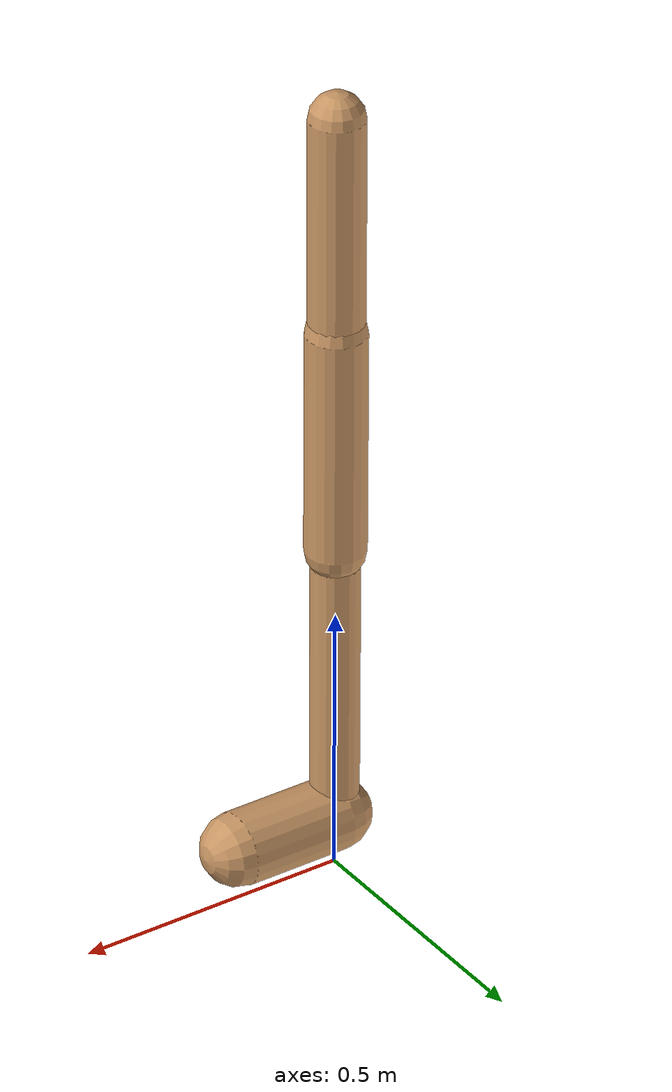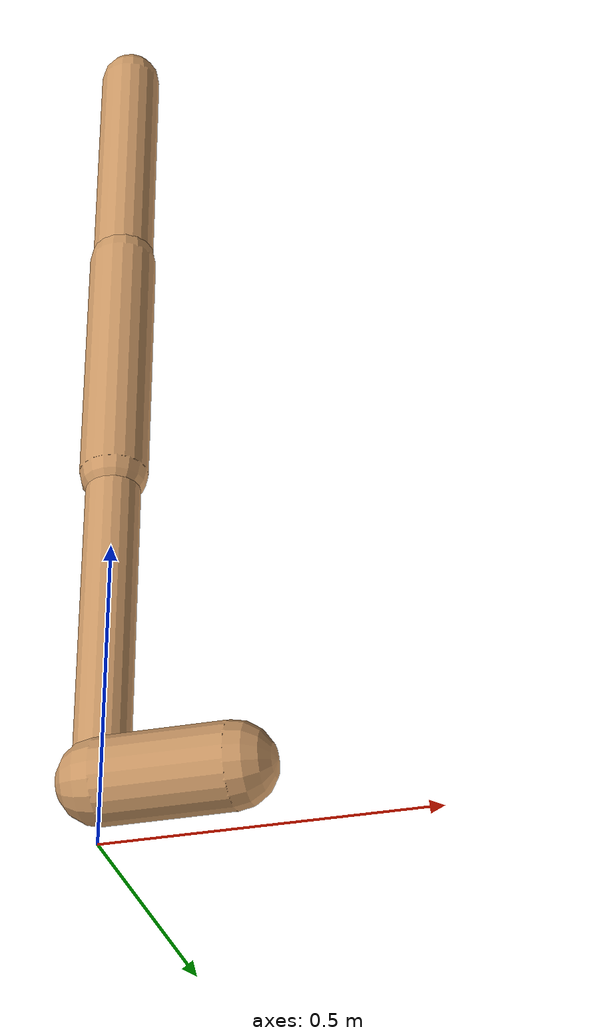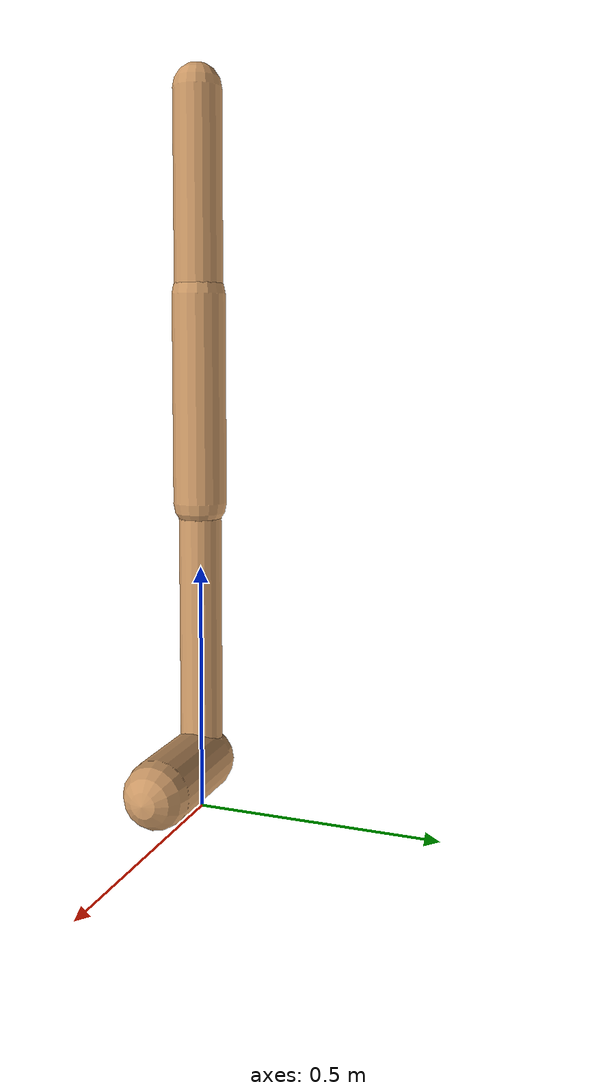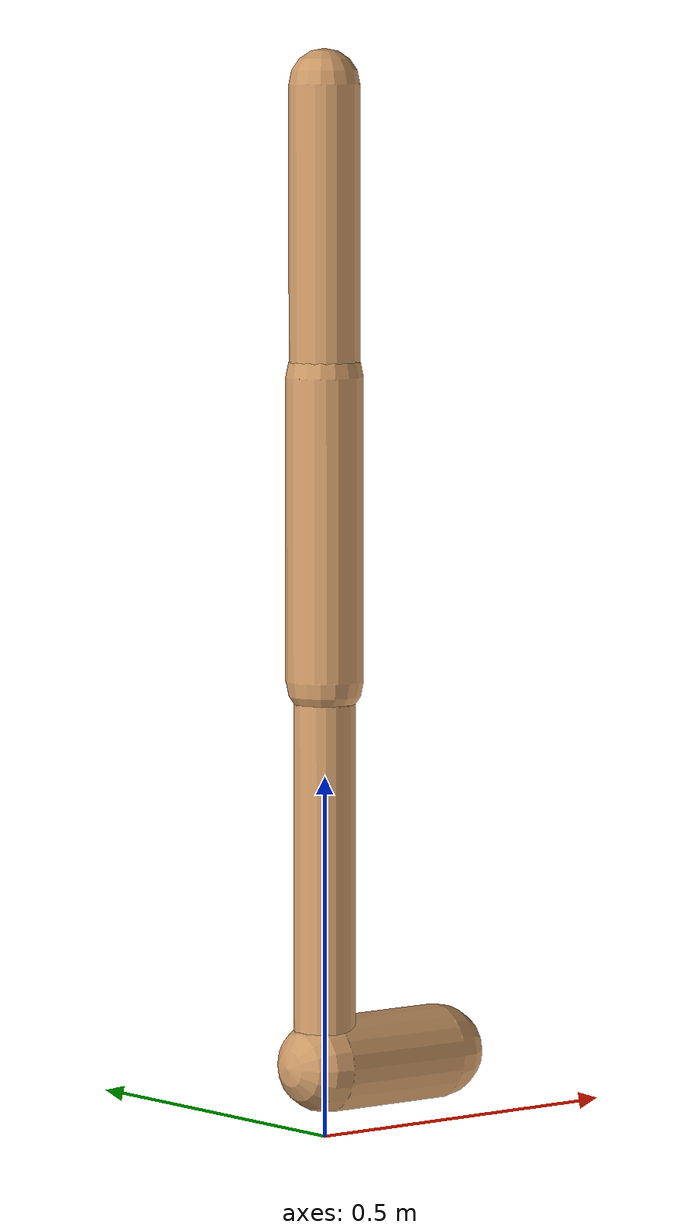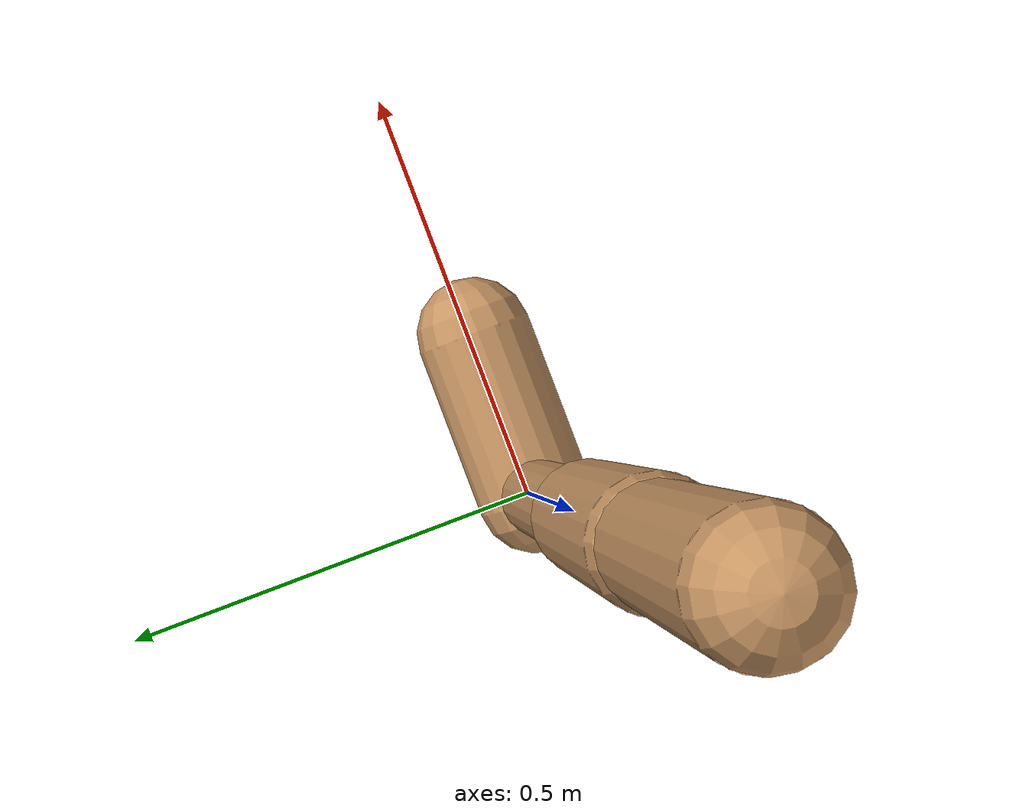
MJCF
<mujoco model="walker2d">
  <compiler angle="degree" coordinate="global" inertiafromgeom="true" />
  <default>
    <joint armature="0.01" damping=".1" limited="true" />
    <geom conaffinity="0" condim="3" contype="1" density="1000" friction="0.8 .1 .1" rgba="0.8 0.6 .4 1" />
  </default>
  <option integrator="RK4" timestep="0.002" />
  <worldbody>

    <body name="torso" pos="0 0 -0.06801991816535004">
      <joint armature="0" axis="1 0 0" damping="0" limited="false" name="ignorex" pos="0 0 0" stiffness="0" type="slide" />
      <joint armature="0" axis="0 0 1" damping="0" limited="false" name="ignorez" pos="0 0 0" ref="1.25" stiffness="0" type="slide" />
      <joint armature="0" axis="0 1 0" damping="0" limited="false" name="ignorey" pos="0 0 0" stiffness="0" type="hinge" />
      <geom fromto="0 0 1.45 0 0 1.05" name="torso_geom" size="0.04894842085697483" type="capsule" />
      <body name="thigh">
        <joint axis="0 -1 0" name="thigh_joint" pos="0 0 1.05" range="-150 0" type="hinge" />
        <geom fromto="0.0 0.0 1.05 0.0 0.0 0.6322199612362184" name="thigh_geom" size="0.05374040296069119" type="capsule" />
        <body name="leg" pos="0.0 0.0 0.0322199612362184">
          <joint axis="0 -1 0" name="leg_joint" pos="0 0 0.6" range="-150 0" type="hinge" />
          <geom fromto="0.0 0.0 0.6 0.0 0.0 0.1357999569291316" name="leg_geom" size="0.04299232236855295" type="capsule" />
          <body name="foot" pos="0.0 0.0 0.0357999569291316">
            <joint axis="0 -1 0" name="foot_joint" pos="0 0 0.1" range="-45 45" type="hinge" />
            <geom fromto="0.0 0.0 0.1 0.19879744205457323 0.0 0.1" name="foot_geom" size="0.0658071946473539" type="capsule" />
          </body>
        </body>
      </body>

      <body name="thigh_left">
        <joint axis="0 -1 0" name="thigh_left_joint" pos="0 0 1.05" range="-150 0" type="hinge" />
        <geom fromto="0.0 0.0 1.05 0.0 0.0 0.6322199612362184" name="thigh_left_geom" rgba=".7 .3 .6 1" size="0.05374040296069119" type="capsule" />
        <body name="leg_left" pos="0.0 0.0 0.0322199612362184">
          <joint axis="0 -1 0" name="leg_left_joint" pos="0 0 0.6" range="-150 0" type="hinge" />
          <geom fromto="0.0 0.0 0.6 0.0 0.0 0.1357999569291316" name="leg_left_geom" rgba=".7 .3 .6 1" size="0.04299232236855295" type="capsule" />
          <body name="foot_left" pos="0.0 0.0 0.0357999569291316">
            <joint axis="0 -1 0" name="foot_left_joint" pos="0 0 0.1" range="-45 45" type="hinge" />
            <geom fromto="0.0 0.0 0.1 0.19879744205457323 0.0 0.1" name="foot_left_geom" rgba=".7 .3 .6 1" size="0.0658071946473539" type="capsule" />
          </body>
        </body>
      </body>
    </body>
  </worldbody>
  <actuator>

    <motor ctrllimited="true" ctrlrange="-1.0 1.0" gear="100" joint="thigh_joint" />
    <motor ctrllimited="true" ctrlrange="-1.0 1.0" gear="100" joint="leg_joint" />
    <motor ctrllimited="true" ctrlrange="-1.0 1.0" gear="100" joint="foot_joint" />
    <motor ctrllimited="true" ctrlrange="-1.0 1.0" gear="100" joint="thigh_left_joint" />
    <motor ctrllimited="true" ctrlrange="-1.0 1.0" gear="100" joint="leg_left_joint" />
    <motor ctrllimited="true" ctrlrange="-1.0 1.0" gear="100" joint="foot_left_joint" />

  </actuator>
</mujoco>
